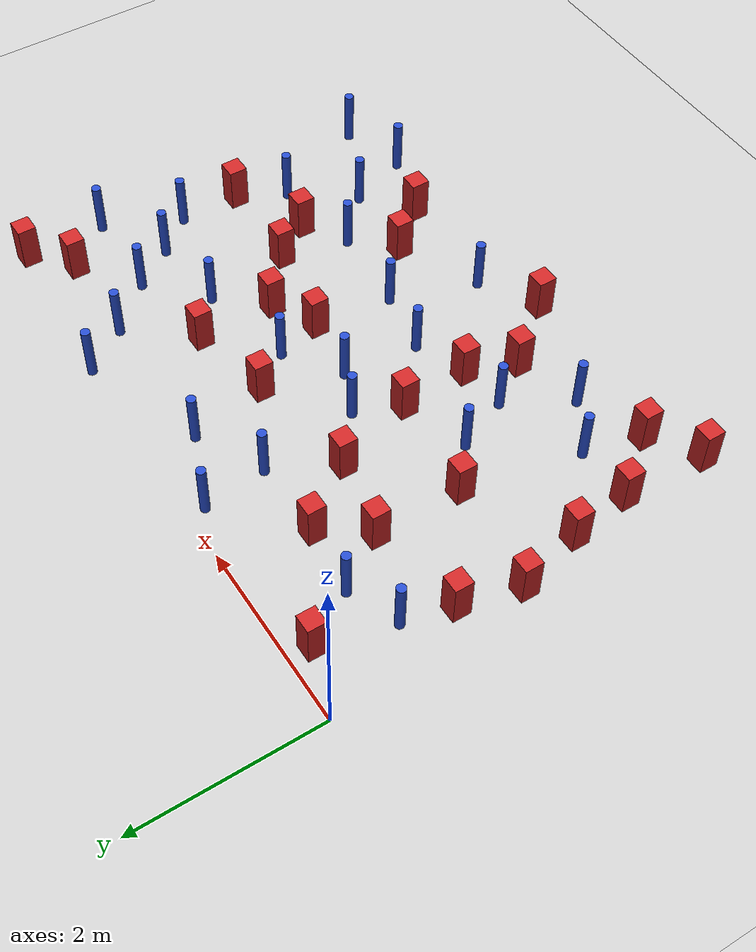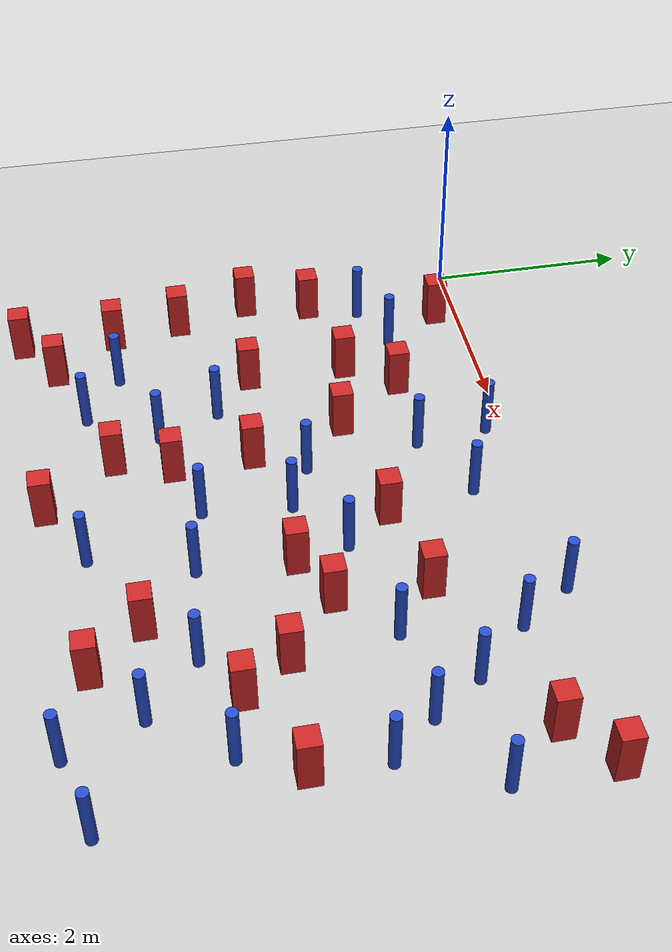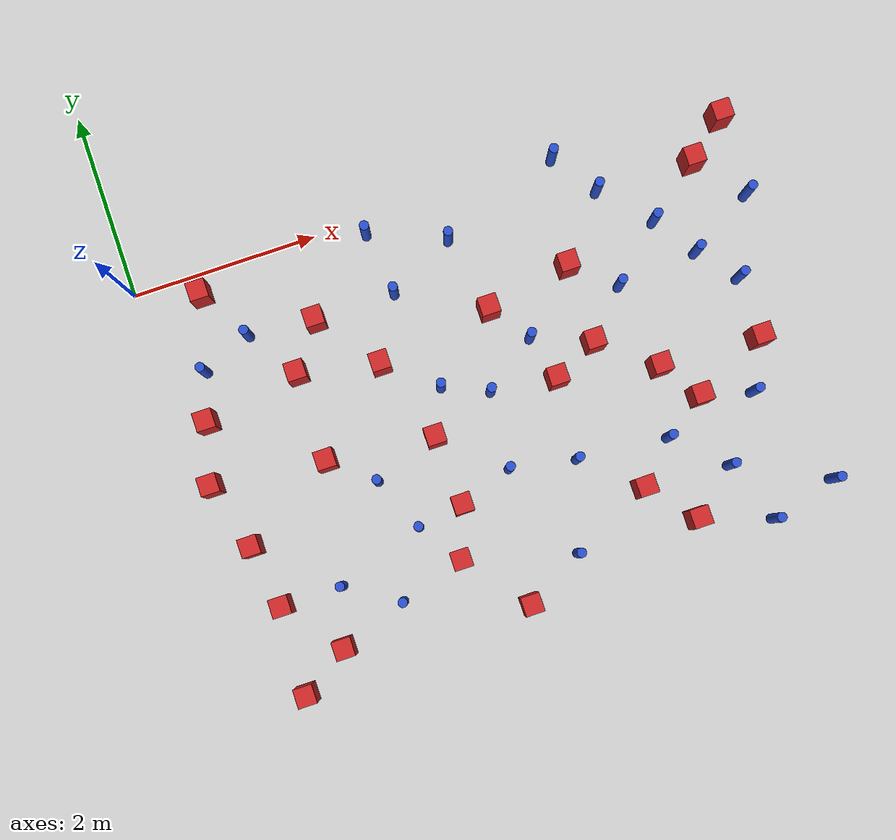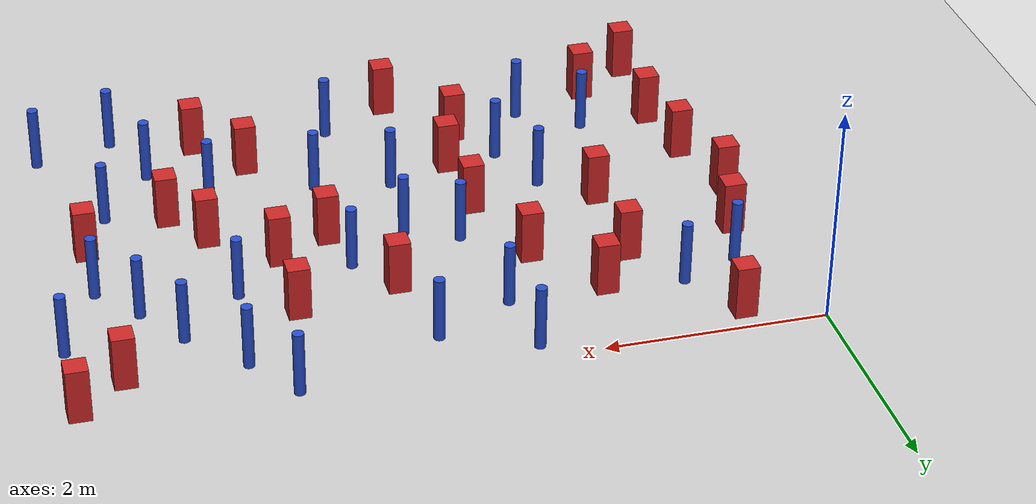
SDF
<sdf version="1.6">
 <world name="default">
  <model name="ground_plane">
   <static>1</static>
   <link name="link">
    <collision name="collision">
     <geometry><plane><normal>0 0 1</normal><size>100 100</size></plane></geometry>
     <surface><friction><ode><mu>100</mu><mu2>50</mu2></ode></friction></surface>
    </collision>
    <visual name="visual">
     <cast_shadows>0</cast_shadows>
     <geometry><plane><normal>0 0 1</normal><size>100 100</size></plane></geometry>
     <material>
      <ambient>1.0 1.0 1.0 1.0</ambient>
      <diffuse>0.8 0.8 0.8 1.0</diffuse>
      <specular>0.01 0.01 0.01 1.000000</specular>
     </material>
    </visual>
   </link>
  </model>
  <model name="NamedLocations">
   <static>true</static>
   <link name="DefaultStart"><pose>8.5 0 0 0 0 3.14</pose></link>
  </model>
  <model name="pole_obstacle4">
   <static>true</static>
   <pose>2.52354586549 -0.172979752865 7.38925637345e-09 -8.471706928e-08 1.24976765208e-08 -1.7451309301e-07</pose>
   <link name="link">
    <pose>0 0 0.3 0 -0 0</pose>
    <inertial>
     <mass>1</mass>
     <inertia><ixx>0.145833</ixx><ixy>0</ixy><ixz>0</ixz><iyy>0.145833</iyy><iyz>0</iyz><izz>0.125</izz></inertia>
    </inertial>
    <collision name="collision">
     <geometry><cylinder><radius>0.05</radius><length>.6</length></cylinder></geometry>
    </collision>
    <visual name="visual">
     <geometry><cylinder><radius>0.05</radius><length>.6</length></cylinder></geometry>
     <material>
      <script><name>Gazebo/Blue</name><uri>file://media/materials/scripts/gazebo.material</uri></script>
     </material>
    </visual>
   </link>
  </model>
  <model name="pole_obstacle6">
   <static>true</static>
   <pose>1.14026042025 -3.58873495884 7.38925637345e-09 -8.47170692799e-08 1.24976765053e-08 -1.74513093017e-07</pose>
   <link name="link">
    <pose>0 0 0.3 0 -0 0</pose>
    <inertial>
     <mass>1</mass>
     <inertia><ixx>0.145833</ixx><ixy>0</ixy><ixz>0</ixz><iyy>0.145833</iyy><iyz>0</iyz><izz>0.125</izz></inertia>
    </inertial>
    <collision name="collision">
     <geometry><cylinder><radius>0.05</radius><length>.6</length></cylinder></geometry>
    </collision>
    <visual name="visual">
     <geometry><cylinder><radius>0.05</radius><length>.6</length></cylinder></geometry>
     <material>
      <script><name>Gazebo/Blue</name><uri>file://media/materials/scripts/gazebo.material</uri></script>
     </material>
    </visual>
   </link>
  </model>
  <model name="square_post_obstacle4">
   <static>true</static>
   <pose>0.182297855617 -2.18379983032 1.91545236811e-07 -7.35059704564e-06 1.12565212e-07 2.39332434364e-05</pose>
   <link name="link">
    <pose>0 0 0.25 0 -0 0</pose>
    <inertial>
     <mass>100</mass>
     <inertia>
      <ixx>0.166667</ixx>
      <ixy>0</ixy>
      <ixz>0</ixz>
      <iyy>0.166667</iyy>
      <iyz>0</iyz>
      <izz>0.166667</izz>
     </inertia>
    </inertial>
    <collision name="collision"><geometry><box><size>.2 .2 .5</size></box></geometry></collision>
    <visual name="visual">
     <geometry><box><size>.2 .2 .5</size></box></geometry>
     <material>
      <script><name>Gazebo/Red</name><uri>file://media/materials/scripts/gazebo.material</uri></script>
     </material>
    </visual>
   </link>
  </model>
  <model name="square_post_obstacle7">
   <static>true</static>
   <pose>0.385087380425 -2.91029149053 1.91545236811e-07 -7.35059704564e-06 1.12565212e-07 2.39332434364e-05</pose>
   <link name="link">
    <pose>0 0 0.25 0 -0 0</pose>
    <inertial>
     <mass>100</mass>
     <inertia>
      <ixx>0.166667</ixx>
      <ixy>0</ixy>
      <ixz>0</ixz>
      <iyy>0.166667</iyy>
      <iyz>0</iyz>
      <izz>0.166667</izz>
     </inertia>
    </inertial>
    <collision name="collision"><geometry><box><size>.2 .2 .5</size></box></geometry></collision>
    <visual name="visual">
     <geometry><box><size>.2 .2 .5</size></box></geometry>
     <material>
      <script><name>Gazebo/Red</name><uri>file://media/materials/scripts/gazebo.material</uri></script>
     </material>
    </visual>
   </link>
  </model>
  <model name="pole_obstacle10">
   <static>true</static>
   <pose>1.82763532323 -2.68481853135 7.38925637345e-09 -8.47170692799e-08 1.24976765053e-08 -1.74513093017e-07</pose>
   <link name="link">
    <pose>0 0 0.3 0 -0 0</pose>
    <inertial>
     <mass>1</mass>
     <inertia><ixx>0.145833</ixx><ixy>0</ixy><ixz>0</ixz><iyy>0.145833</iyy><iyz>0</iyz><izz>0.125</izz></inertia>
    </inertial>
    <collision name="collision">
     <geometry><cylinder><radius>0.05</radius><length>.6</length></cylinder></geometry>
    </collision>
    <visual name="visual">
     <geometry><cylinder><radius>0.05</radius><length>.6</length></cylinder></geometry>
     <material>
      <script><name>Gazebo/Blue</name><uri>file://media/materials/scripts/gazebo.material</uri></script>
     </material>
    </visual>
   </link>
  </model>
  <model name="pole_obstacle11">
   <static>true</static>
   <pose>3.85353323174 -3.12247104477 7.38925637345e-09 -8.47170692798e-08 1.24976764939e-08 -1.74513093025e-07</pose>
   <link name="link">
    <pose>0 0 0.3 0 -0 0</pose>
    <inertial>
     <mass>1</mass>
     <inertia><ixx>0.145833</ixx><ixy>0</ixy><ixz>0</ixz><iyy>0.145833</iyy><iyz>0</iyz><izz>0.125</izz></inertia>
    </inertial>
    <collision name="collision">
     <geometry><cylinder><radius>0.05</radius><length>.6</length></cylinder></geometry>
    </collision>
    <visual name="visual">
     <geometry><cylinder><radius>0.05</radius><length>.6</length></cylinder></geometry>
     <material>
      <script><name>Gazebo/Blue</name><uri>file://media/materials/scripts/gazebo.material</uri></script>
     </material>
    </visual>
   </link>
  </model>
  <model name="pole_obstacle18">
   <static>true</static>
   <pose>6.0780218421 -1.86008930025 7.38925637345e-09 -8.471706928e-08 1.24976765134e-08 -1.74513093015e-07</pose>
   <link name="link">
    <pose>0 0 0.3 0 -0 0</pose>
    <inertial>
     <mass>1</mass>
     <inertia><ixx>0.145833</ixx><ixy>0</ixy><ixz>0</ixz><iyy>0.145833</iyy><iyz>0</iyz><izz>0.125</izz></inertia>
    </inertial>
    <collision name="collision">
     <geometry><cylinder><radius>0.05</radius><length>.6</length></cylinder></geometry>
    </collision>
    <visual name="visual">
     <geometry><cylinder><radius>0.05</radius><length>.6</length></cylinder></geometry>
     <material>
      <script><name>Gazebo/Blue</name><uri>file://media/materials/scripts/gazebo.material</uri></script>
     </material>
    </visual>
   </link>
  </model>
  <model name="pole_obstacle25">
   <static>true</static>
   <pose>5.5819517249 -4.34960210006 7.38925637345e-09 -8.47170692796e-08 1.24976764786e-08 -1.74513093032e-07</pose>
   <link name="link">
    <pose>0 0 0.3 0 -0 0</pose>
    <inertial>
     <mass>1</mass>
     <inertia><ixx>0.145833</ixx><ixy>0</ixy><ixz>0</ixz><iyy>0.145833</iyy><iyz>0</iyz><izz>0.125</izz></inertia>
    </inertial>
    <collision name="collision">
     <geometry><cylinder><radius>0.05</radius><length>.6</length></cylinder></geometry>
    </collision>
    <visual name="visual">
     <geometry><cylinder><radius>0.05</radius><length>.6</length></cylinder></geometry>
     <material>
      <script><name>Gazebo/Blue</name><uri>file://media/materials/scripts/gazebo.material</uri></script>
     </material>
    </visual>
   </link>
  </model>
  <model name="square_post_obstacle20">
   <static>true</static>
   <pose>0.49382564649 -3.58692973787 1.91545236811e-07 -7.35059704564e-06 1.12565212e-07 2.39332434364e-05</pose>
   <link name="link">
    <pose>0 0 0.25 0 -0 0</pose>
    <inertial>
     <mass>100</mass>
     <inertia>
      <ixx>0.166667</ixx>
      <ixy>0</ixy>
      <ixz>0</ixz>
      <iyy>0.166667</iyy>
      <iyz>0</iyz>
      <izz>0.166667</izz>
     </inertia>
    </inertial>
    <collision name="collision"><geometry><box><size>.2 .2 .5</size></box></geometry></collision>
    <visual name="visual">
     <geometry><box><size>.2 .2 .5</size></box></geometry>
     <material>
      <script><name>Gazebo/Red</name><uri>file://media/materials/scripts/gazebo.material</uri></script>
     </material>
    </visual>
   </link>
  </model>
  <model name="square_post_obstacle26">
   <static>true</static>
   <pose>0.342454666947 -1.54306636643 1.91545236811e-07 -7.35059704564e-06 1.12565212e-07 2.39332434364e-05</pose>
   <link name="link">
    <pose>0 0 0.25 0 -0 0</pose>
    <inertial>
     <mass>100</mass>
     <inertia>
      <ixx>0.166667</ixx>
      <ixy>0</ixy>
      <ixz>0</ixz>
      <iyy>0.166667</iyy>
      <iyz>0</iyz>
      <izz>0.166667</izz>
     </inertia>
    </inertial>
    <collision name="collision"><geometry><box><size>.2 .2 .5</size></box></geometry></collision>
    <visual name="visual">
     <geometry><box><size>.2 .2 .5</size></box></geometry>
     <material>
      <script><name>Gazebo/Red</name><uri>file://media/materials/scripts/gazebo.material</uri></script>
     </material>
    </visual>
   </link>
  </model>
  <model name="square_post_obstacle28">
   <static>true</static>
   <pose>1.38189060266 -1.3526002191 1.91545236811e-07 -7.35059704564e-06 1.12565212e-07 2.39332434364e-05</pose>
   <link name="link">
    <pose>0 0 0.25 0 -0 0</pose>
    <inertial>
     <mass>100</mass>
     <inertia>
      <ixx>0.166667</ixx>
      <ixy>0</ixy>
      <ixz>0</ixz>
      <iyy>0.166667</iyy>
      <iyz>0</iyz>
      <izz>0.166667</izz>
     </inertia>
    </inertial>
    <collision name="collision"><geometry><box><size>.2 .2 .5</size></box></geometry></collision>
    <visual name="visual">
     <geometry><box><size>.2 .2 .5</size></box></geometry>
     <material>
      <script><name>Gazebo/Red</name><uri>file://media/materials/scripts/gazebo.material</uri></script>
     </material>
    </visual>
   </link>
  </model>
  <model name="pole_obstacle35">
   <static>true</static>
   <pose>5.43106437271 -1.00845521671 7.38925637345e-09 -8.471706928e-08 1.24976765101e-08 -1.74513093015e-07</pose>
   <link name="link">
    <pose>0 0 0.3 0 -0 0</pose>
    <inertial>
     <mass>1</mass>
     <inertia><ixx>0.145833</ixx><ixy>0</ixy><ixz>0</ixz><iyy>0.145833</iyy><iyz>0</iyz><izz>0.125</izz></inertia>
    </inertial>
    <collision name="collision">
     <geometry><cylinder><radius>0.05</radius><length>.6</length></cylinder></geometry>
    </collision>
    <visual name="visual">
     <geometry><cylinder><radius>0.05</radius><length>.6</length></cylinder></geometry>
     <material>
      <script><name>Gazebo/Blue</name><uri>file://media/materials/scripts/gazebo.material</uri></script>
     </material>
    </visual>
   </link>
  </model>
  <model name="pole_obstacle40">
   <static>true</static>
   <pose>4.82441043605 -3.2085314311 7.38925637345e-09 -8.47170692798e-08 1.24976764937e-08 -1.74513093023e-07</pose>
   <link name="link">
    <pose>0 0 0.3 0 -0 0</pose>
    <inertial>
     <mass>1</mass>
     <inertia><ixx>0.145833</ixx><ixy>0</ixy><ixz>0</ixz><iyy>0.145833</iyy><iyz>0</iyz><izz>0.125</izz></inertia>
    </inertial>
    <collision name="collision">
     <geometry><cylinder><radius>0.05</radius><length>.6</length></cylinder></geometry>
    </collision>
    <visual name="visual">
     <geometry><cylinder><radius>0.05</radius><length>.6</length></cylinder></geometry>
     <material>
      <script><name>Gazebo/Blue</name><uri>file://media/materials/scripts/gazebo.material</uri></script>
     </material>
    </visual>
   </link>
  </model>
  <model name="square_post_obstacle42">
   <static>true</static>
   <pose>6.44566975658 -0.173356314862 1.91545236811e-07 -7.35059704564e-06 1.12565212e-07 2.39332434364e-05</pose>
   <link name="link">
    <pose>0 0 0.25 0 -0 0</pose>
    <inertial>
     <mass>100</mass>
     <inertia>
      <ixx>0.166667</ixx>
      <ixy>0</ixy>
      <ixz>0</ixz>
      <iyy>0.166667</iyy>
      <iyz>0</iyz>
      <izz>0.166667</izz>
     </inertia>
    </inertial>
    <collision name="collision"><geometry><box><size>.2 .2 .5</size></box></geometry></collision>
    <visual name="visual">
     <geometry><box><size>.2 .2 .5</size></box></geometry>
     <material>
      <script><name>Gazebo/Red</name><uri>file://media/materials/scripts/gazebo.material</uri></script>
     </material>
    </visual>
   </link>
  </model>
  <model name="square_post_obstacle45">
   <static>true</static>
   <pose>0.459297580475 -4.51668139729 1.91545236811e-07 -7.35059704564e-06 1.12565212e-07 2.39332434364e-05</pose>
   <link name="link">
    <pose>0 0 0.25 0 -0 0</pose>
    <inertial>
     <mass>100</mass>
     <inertia>
      <ixx>0.166667</ixx>
      <ixy>0</ixy>
      <ixz>0</ixz>
      <iyy>0.166667</iyy>
      <iyz>0</iyz>
      <izz>0.166667</izz>
     </inertia>
    </inertial>
    <collision name="collision"><geometry><box><size>.2 .2 .5</size></box></geometry></collision>
    <visual name="visual">
     <geometry><box><size>.2 .2 .5</size></box></geometry>
     <material>
      <script><name>Gazebo/Red</name><uri>file://media/materials/scripts/gazebo.material</uri></script>
     </material>
    </visual>
   </link>
  </model>
  <model name="pole_obstacle65">
   <static>true</static>
   <pose>3.32256471329 -0.504397547687 7.38925637345e-09 -8.471706928e-08 1.24976765186e-08 -1.74513093012e-07</pose>
   <link name="link">
    <pose>0 0 0.3 0 -0 0</pose>
    <inertial>
     <mass>1</mass>
     <inertia><ixx>0.145833</ixx><ixy>0</ixy><ixz>0</ixz><iyy>0.145833</iyy><iyz>0</iyz><izz>0.125</izz></inertia>
    </inertial>
    <collision name="collision">
     <geometry><cylinder><radius>0.05</radius><length>.6</length></cylinder></geometry>
    </collision>
    <visual name="visual">
     <geometry><cylinder><radius>0.05</radius><length>.6</length></cylinder></geometry>
     <material>
      <script><name>Gazebo/Blue</name><uri>file://media/materials/scripts/gazebo.material</uri></script>
     </material>
    </visual>
   </link>
  </model>
  <model name="pole_obstacle77">
   <static>true</static>
   <pose>0.481585702395 -1.02948417264 7.38925637345e-09 -8.47170692798e-08 1.24976764961e-08 -1.74513093022e-07</pose>
   <link name="link">
    <pose>0 0 0.3 0 -0 0</pose>
    <inertial>
     <mass>1</mass>
     <inertia><ixx>0.145833</ixx><ixy>0</ixy><ixz>0</ixz><iyy>0.145833</iyy><iyz>0</iyz><izz>0.125</izz></inertia>
    </inertial>
    <collision name="collision">
     <geometry><cylinder><radius>0.05</radius><length>.6</length></cylinder></geometry>
    </collision>
    <visual name="visual">
     <geometry><cylinder><radius>0.05</radius><length>.6</length></cylinder></geometry>
     <material>
      <script><name>Gazebo/Blue</name><uri>file://media/materials/scripts/gazebo.material</uri></script>
     </material>
    </visual>
   </link>
  </model>
  <model name="pole_obstacle79">
   <static>true</static>
   <pose>3.5519941236 -4.0437278819 7.38925637345e-09 -8.47170692799e-08 1.24976764995e-08 -1.74513093021e-07</pose>
   <link name="link">
    <pose>0 0 0.3 0 -0 0</pose>
    <inertial>
     <mass>1</mass>
     <inertia><ixx>0.145833</ixx><ixy>0</ixy><ixz>0</ixz><iyy>0.145833</iyy><iyz>0</iyz><izz>0.125</izz></inertia>
    </inertial>
    <collision name="collision">
     <geometry><cylinder><radius>0.05</radius><length>.6</length></cylinder></geometry>
    </collision>
    <visual name="visual">
     <geometry><cylinder><radius>0.05</radius><length>.6</length></cylinder></geometry>
     <material>
      <script><name>Gazebo/Blue</name><uri>file://media/materials/scripts/gazebo.material</uri></script>
     </material>
    </visual>
   </link>
  </model>
  <model name="square_post_obstacle70">
   <static>true</static>
   <pose>4.41020320494 -1.16916210372 1.91545236811e-07 -7.35059704564e-06 1.12565212e-07 2.39332434364e-05</pose>
   <link name="link">
    <pose>0 0 0.25 0 -0 0</pose>
    <inertial>
     <mass>100</mass>
     <inertia>
      <ixx>0.166667</ixx>
      <ixy>0</ixy>
      <ixz>0</ixz>
      <iyy>0.166667</iyy>
      <iyz>0</iyz>
      <izz>0.166667</izz>
     </inertia>
    </inertial>
    <collision name="collision"><geometry><box><size>.2 .2 .5</size></box></geometry></collision>
    <visual name="visual">
     <geometry><box><size>.2 .2 .5</size></box></geometry>
     <material>
      <script><name>Gazebo/Red</name><uri>file://media/materials/scripts/gazebo.material</uri></script>
     </material>
    </visual>
   </link>
  </model>
  <model name="square_post_obstacle72">
   <static>true</static>
   <pose>5.27130910377 -2.8988232657 1.91545236811e-07 -7.35059704564e-06 1.12565212e-07 2.39332434364e-05</pose>
   <link name="link">
    <pose>0 0 0.25 0 -0 0</pose>
    <inertial>
     <mass>100</mass>
     <inertia>
      <ixx>0.166667</ixx>
      <ixy>0</ixy>
      <ixz>0</ixz>
      <iyy>0.166667</iyy>
      <iyz>0</iyz>
      <izz>0.166667</izz>
     </inertia>
    </inertial>
    <collision name="collision"><geometry><box><size>.2 .2 .5</size></box></geometry></collision>
    <visual name="visual">
     <geometry><box><size>.2 .2 .5</size></box></geometry>
     <material>
      <script><name>Gazebo/Red</name><uri>file://media/materials/scripts/gazebo.material</uri></script>
     </material>
    </visual>
   </link>
  </model>
  <model name="pole_obstacle85">
   <static>true</static>
   <pose>4.96795111286 -0.511769533748 7.38925637345e-09 -8.47170692798e-08 1.24976765005e-08 -1.74513093021e-07</pose>
   <link name="link">
    <pose>0 0 0.3 0 -0 0</pose>
    <inertial>
     <mass>1</mass>
     <inertia><ixx>0.145833</ixx><ixy>0</ixy><ixz>0</ixz><iyy>0.145833</iyy><iyz>0</iyz><izz>0.125</izz></inertia>
    </inertial>
    <collision name="collision">
     <geometry><cylinder><radius>0.05</radius><length>.6</length></cylinder></geometry>
    </collision>
    <visual name="visual">
     <geometry><cylinder><radius>0.05</radius><length>.6</length></cylinder></geometry>
     <material>
      <script><name>Gazebo/Blue</name><uri>file://media/materials/scripts/gazebo.material</uri></script>
     </material>
    </visual>
   </link>
  </model>
  <model name="square_post_obstacle73">
   <static>true</static>
   <pose>2.53244975121 -2.43503713704 1.91545236811e-07 -7.35059704564e-06 1.12565212e-07 2.39332434364e-05</pose>
   <link name="link">
    <pose>0 0 0.25 0 -0 0</pose>
    <inertial>
     <mass>100</mass>
     <inertia>
      <ixx>0.166667</ixx>
      <ixy>0</ixy>
      <ixz>0</ixz>
      <iyy>0.166667</iyy>
      <iyz>0</iyz>
      <izz>0.166667</izz>
     </inertia>
    </inertial>
    <collision name="collision"><geometry><box><size>.2 .2 .5</size></box></geometry></collision>
    <visual name="visual">
     <geometry><box><size>.2 .2 .5</size></box></geometry>
     <material>
      <script><name>Gazebo/Red</name><uri>file://media/materials/scripts/gazebo.material</uri></script>
     </material>
    </visual>
   </link>
  </model>
  <model name="square_post_obstacle86">
   <static>true</static>
   <pose>6.01618016727 -0.530010584377 1.91545236811e-07 -7.35059704564e-06 1.12565212e-07 2.39332434364e-05</pose>
   <link name="link">
    <pose>0 0 0.25 0 -0 0</pose>
    <inertial>
     <mass>100</mass>
     <inertia>
      <ixx>0.166667</ixx>
      <ixy>0</ixy>
      <ixz>0</ixz>
      <iyy>0.166667</iyy>
      <iyz>0</iyz>
      <izz>0.166667</izz>
     </inertia>
    </inertial>
    <collision name="collision"><geometry><box><size>.2 .2 .5</size></box></geometry></collision>
    <visual name="visual">
     <geometry><box><size>.2 .2 .5</size></box></geometry>
     <material>
      <script><name>Gazebo/Red</name><uri>file://media/materials/scripts/gazebo.material</uri></script>
     </material>
    </visual>
   </link>
  </model>
  <model name="pole_obstacle98">
   <static>true</static>
   <pose>2.07930388125 -3.26746651544 7.38925637345e-09 -8.47170692798e-08 1.24976764939e-08 -1.74513093025e-07</pose>
   <link name="link">
    <pose>0 0 0.3 0 -0 0</pose>
    <inertial>
     <mass>1</mass>
     <inertia><ixx>0.145833</ixx><ixy>0</ixy><ixz>0</ixz><iyy>0.145833</iyy><iyz>0</iyz><izz>0.125</izz></inertia>
    </inertial>
    <collision name="collision">
     <geometry><cylinder><radius>0.05</radius><length>.6</length></cylinder></geometry>
    </collision>
    <visual name="visual">
     <geometry><cylinder><radius>0.05</radius><length>.6</length></cylinder></geometry>
     <material>
      <script><name>Gazebo/Blue</name><uri>file://media/materials/scripts/gazebo.material</uri></script>
     </material>
    </visual>
   </link>
  </model>
  <model name="pole_obstacle99">
   <static>true</static>
   <pose>1.68852073536 -3.94086955083 7.38925637345e-09 -8.47170692799e-08 1.24976765053e-08 -1.74513093017e-07</pose>
   <link name="link">
    <pose>0 0 0.3 0 -0 0</pose>
    <inertial>
     <mass>1</mass>
     <inertia><ixx>0.145833</ixx><ixy>0</ixy><ixz>0</ixz><iyy>0.145833</iyy><iyz>0</iyz><izz>0.125</izz></inertia>
    </inertial>
    <collision name="collision">
     <geometry><cylinder><radius>0.05</radius><length>.6</length></cylinder></geometry>
    </collision>
    <visual name="visual">
     <geometry><cylinder><radius>0.05</radius><length>.6</length></cylinder></geometry>
     <material>
      <script><name>Gazebo/Blue</name><uri>file://media/materials/scripts/gazebo.material</uri></script>
     </material>
    </visual>
   </link>
  </model>
  <model name="square_post_obstacle97">
   <static>true</static>
   <pose>4.82986860788 -4.09003584182 1.91545236811e-07 -7.35059704564e-06 1.12565212e-07 2.39332434364e-05</pose>
   <link name="link">
    <pose>0 0 0.25 0 -0 0</pose>
    <inertial>
     <mass>100</mass>
     <inertia>
      <ixx>0.166667</ixx>
      <ixy>0</ixy>
      <ixz>0</ixz>
      <iyy>0.166667</iyy>
      <iyz>0</iyz>
      <izz>0.166667</izz>
     </inertia>
    </inertial>
    <collision name="collision"><geometry><box><size>.2 .2 .5</size></box></geometry></collision>
    <visual name="visual">
     <geometry><box><size>.2 .2 .5</size></box></geometry>
     <material>
      <script><name>Gazebo/Red</name><uri>file://media/materials/scripts/gazebo.material</uri></script>
     </material>
    </visual>
   </link>
  </model>
  <model name="square_post_obstacle98">
   <static>true</static>
   <pose>4.41330014491 -3.6151857069 1.91545236811e-07 -7.35059704564e-06 1.12565212e-07 2.39332434364e-05</pose>
   <link name="link">
    <pose>0 0 0.25 0 -0 0</pose>
    <inertial>
     <mass>100</mass>
     <inertia>
      <ixx>0.166667</ixx>
      <ixy>0</ixy>
      <ixz>0</ixz>
      <iyy>0.166667</iyy>
      <iyz>0</iyz>
      <izz>0.166667</izz>
     </inertia>
    </inertial>
    <collision name="collision"><geometry><box><size>.2 .2 .5</size></box></geometry></collision>
    <visual name="visual">
     <geometry><box><size>.2 .2 .5</size></box></geometry>
     <material>
      <script><name>Gazebo/Red</name><uri>file://media/materials/scripts/gazebo.material</uri></script>
     </material>
    </visual>
   </link>
  </model>
  <model name="pole_obstacle104">
   <static>true</static>
   <pose>3.23064411423 -2.1715812948 7.38925637345e-09 -8.47170692798e-08 1.24976764939e-08 -1.74513093025e-07</pose>
   <link name="link">
    <pose>0 0 0.3 0 -0 0</pose>
    <inertial>
     <mass>1</mass>
     <inertia><ixx>0.145833</ixx><ixy>0</ixy><ixz>0</ixz><iyy>0.145833</iyy><iyz>0</iyz><izz>0.125</izz></inertia>
    </inertial>
    <collision name="collision">
     <geometry><cylinder><radius>0.05</radius><length>.6</length></cylinder></geometry>
    </collision>
    <visual name="visual">
     <geometry><cylinder><radius>0.05</radius><length>.6</length></cylinder></geometry>
     <material>
      <script><name>Gazebo/Blue</name><uri>file://media/materials/scripts/gazebo.material</uri></script>
     </material>
    </visual>
   </link>
  </model>
  <model name="square_post_obstacle102">
   <static>true</static>
   <pose>2.23478806774 -1.53384341802 1.91545236811e-07 -7.35059704564e-06 1.12565212e-07 2.39332434364e-05</pose>
   <link name="link">
    <pose>0 0 0.25 0 -0 0</pose>
    <inertial>
     <mass>100</mass>
     <inertia>
      <ixx>0.166667</ixx>
      <ixy>0</ixy>
      <ixz>0</ixz>
      <iyy>0.166667</iyy>
      <iyz>0</iyz>
      <izz>0.166667</izz>
     </inertia>
    </inertial>
    <collision name="collision"><geometry><box><size>.2 .2 .5</size></box></geometry></collision>
    <visual name="visual">
     <geometry><box><size>.2 .2 .5</size></box></geometry>
     <material>
      <script><name>Gazebo/Red</name><uri>file://media/materials/scripts/gazebo.material</uri></script>
     </material>
    </visual>
   </link>
  </model>
  <model name="pole_obstacle112">
   <static>true</static>
   <pose>4.8630517241 -1.54293452733 7.38925637345e-09 -8.471706928e-08 1.24976765134e-08 -1.74513093015e-07</pose>
   <link name="link">
    <pose>0 0 0.3 0 -0 0</pose>
    <inertial>
     <mass>1</mass>
     <inertia><ixx>0.145833</ixx><ixy>0</ixy><ixz>0</ixz><iyy>0.145833</iyy><iyz>0</iyz><izz>0.125</izz></inertia>
    </inertial>
    <collision name="collision">
     <geometry><cylinder><radius>0.05</radius><length>.6</length></cylinder></geometry>
    </collision>
    <visual name="visual">
     <geometry><cylinder><radius>0.05</radius><length>.6</length></cylinder></geometry>
     <material>
      <script><name>Gazebo/Blue</name><uri>file://media/materials/scripts/gazebo.material</uri></script>
     </material>
    </visual>
   </link>
  </model>
  <model name="square_post_obstacle110">
   <static>true</static>
   <pose>1.73243401027 -0.879495644446 1.91545236811e-07 -7.35059704564e-06 1.12565212e-07 2.39332434364e-05</pose>
   <link name="link">
    <pose>0 0 0.25 0 -0 0</pose>
    <inertial>
     <mass>100</mass>
     <inertia>
      <ixx>0.166667</ixx>
      <ixy>0</ixy>
      <ixz>0</ixz>
      <iyy>0.166667</iyy>
      <iyz>0</iyz>
      <izz>0.166667</izz>
     </inertia>
    </inertial>
    <collision name="collision"><geometry><box><size>.2 .2 .5</size></box></geometry></collision>
    <visual name="visual">
     <geometry><box><size>.2 .2 .5</size></box></geometry>
     <material>
      <script><name>Gazebo/Red</name><uri>file://media/materials/scripts/gazebo.material</uri></script>
     </material>
    </visual>
   </link>
  </model>
  <model name="pole_obstacle117">
   <static>true</static>
   <pose>1.02058423602 -0.805461946773 7.38925637345e-09 -8.47170692798e-08 1.24976764942e-08 -1.74513093024e-07</pose>
   <link name="link">
    <pose>0 0 0.3 0 -0 0</pose>
    <inertial>
     <mass>1</mass>
     <inertia><ixx>0.145833</ixx><ixy>0</ixy><ixz>0</ixz><iyy>0.145833</iyy><iyz>0</iyz><izz>0.125</izz></inertia>
    </inertial>
    <collision name="collision">
     <geometry><cylinder><radius>0.05</radius><length>.6</length></cylinder></geometry>
    </collision>
    <visual name="visual">
     <geometry><cylinder><radius>0.05</radius><length>.6</length></cylinder></geometry>
     <material>
      <script><name>Gazebo/Blue</name><uri>file://media/materials/scripts/gazebo.material</uri></script>
     </material>
    </visual>
   </link>
  </model>
  <model name="square_post_obstacle121">
   <static>true</static>
   <pose>0.970241502026 -4.19111780717 1.91545236811e-07 -7.35059704564e-06 1.12565212e-07 2.39332434364e-05</pose>
   <link name="link">
    <pose>0 0 0.25 0 -0 0</pose>
    <inertial>
     <mass>100</mass>
     <inertia>
      <ixx>0.166667</ixx>
      <ixy>0</ixy>
      <ixz>0</ixz>
      <iyy>0.166667</iyy>
      <iyz>0</iyz>
      <izz>0.166667</izz>
     </inertia>
    </inertial>
    <collision name="collision"><geometry><box><size>.2 .2 .5</size></box></geometry></collision>
    <visual name="visual">
     <geometry><box><size>.2 .2 .5</size></box></geometry>
     <material>
      <script><name>Gazebo/Red</name><uri>file://media/materials/scripts/gazebo.material</uri></script>
     </material>
    </visual>
   </link>
  </model>
  <model name="pole_obstacle123">
   <static>true</static>
   <pose>6.45015567072 -1.04547024138 7.38925637345e-09 -8.471706928e-08 1.24976765101e-08 -1.74513093015e-07</pose>
   <link name="link">
    <pose>0 0 0.3 0 -0 0</pose>
    <inertial>
     <mass>1</mass>
     <inertia><ixx>0.145833</ixx><ixy>0</ixy><ixz>0</ixz><iyy>0.145833</iyy><iyz>0</iyz><izz>0.125</izz></inertia>
    </inertial>
    <collision name="collision">
     <geometry><cylinder><radius>0.05</radius><length>.6</length></cylinder></geometry>
    </collision>
    <visual name="visual">
     <geometry><cylinder><radius>0.05</radius><length>.6</length></cylinder></geometry>
     <material>
      <script><name>Gazebo/Blue</name><uri>file://media/materials/scripts/gazebo.material</uri></script>
     </material>
    </visual>
   </link>
  </model>
  <model name="square_post_obstacle127">
   <static>true</static>
   <pose>2.38477010834 -3.71820952959 1.91545236811e-07 -7.35059704564e-06 1.12565212e-07 2.39332434364e-05</pose>
   <link name="link">
    <pose>0 0 0.25 0 -0 0</pose>
    <inertial>
     <mass>100</mass>
     <inertia>
      <ixx>0.166667</ixx>
      <ixy>0</ixy>
      <ixz>0</ixz>
      <iyy>0.166667</iyy>
      <iyz>0</iyz>
      <izz>0.166667</izz>
     </inertia>
    </inertial>
    <collision name="collision"><geometry><box><size>.2 .2 .5</size></box></geometry></collision>
    <visual name="visual">
     <geometry><box><size>.2 .2 .5</size></box></geometry>
     <material>
      <script><name>Gazebo/Red</name><uri>file://media/materials/scripts/gazebo.material</uri></script>
     </material>
    </visual>
   </link>
  </model>
  <model name="square_post_obstacle128">
   <static>true</static>
   <pose>4.97691506553 -2.47465356542 1.91545236811e-07 -7.35059704564e-06 1.12565212e-07 2.39332434364e-05</pose>
   <link name="link">
    <pose>0 0 0.25 0 -0 0</pose>
    <inertial>
     <mass>100</mass>
     <inertia>
      <ixx>0.166667</ixx>
      <ixy>0</ixy>
      <ixz>0</ixz>
      <iyy>0.166667</iyy>
      <iyz>0</iyz>
      <izz>0.166667</izz>
     </inertia>
    </inertial>
    <collision name="collision"><geometry><box><size>.2 .2 .5</size></box></geometry></collision>
    <visual name="visual">
     <geometry><box><size>.2 .2 .5</size></box></geometry>
     <material>
      <script><name>Gazebo/Red</name><uri>file://media/materials/scripts/gazebo.material</uri></script>
     </material>
    </visual>
   </link>
  </model>
  <model name="pole_obstacle132">
   <static>true</static>
   <pose>5.74226064334 -1.46166600901 7.38925637345e-09 -8.471706928e-08 1.24976765134e-08 -1.74513093015e-07</pose>
   <link name="link">
    <pose>0 0 0.3 0 -0 0</pose>
    <inertial>
     <mass>1</mass>
     <inertia><ixx>0.145833</ixx><ixy>0</ixy><ixz>0</ixz><iyy>0.145833</iyy><iyz>0</iyz><izz>0.125</izz></inertia>
    </inertial>
    <collision name="collision">
     <geometry><cylinder><radius>0.05</radius><length>.6</length></cylinder></geometry>
    </collision>
    <visual name="visual">
     <geometry><cylinder><radius>0.05</radius><length>.6</length></cylinder></geometry>
     <material>
      <script><name>Gazebo/Blue</name><uri>file://media/materials/scripts/gazebo.material</uri></script>
     </material>
    </visual>
   </link>
  </model>
  <model name="pole_obstacle137">
   <static>true</static>
   <pose>3.80054773199 -1.76635031219 7.38925637345e-09 -8.471706928e-08 1.24976765152e-08 -1.74513093012e-07</pose>
   <link name="link">
    <pose>0 0 0.3 0 -0 0</pose>
    <inertial>
     <mass>1</mass>
     <inertia><ixx>0.145833</ixx><ixy>0</ixy><ixz>0</ixz><iyy>0.145833</iyy><iyz>0</iyz><izz>0.125</izz></inertia>
    </inertial>
    <collision name="collision">
     <geometry><cylinder><radius>0.05</radius><length>.6</length></cylinder></geometry>
    </collision>
    <visual name="visual">
     <geometry><cylinder><radius>0.05</radius><length>.6</length></cylinder></geometry>
     <material>
      <script><name>Gazebo/Blue</name><uri>file://media/materials/scripts/gazebo.material</uri></script>
     </material>
    </visual>
   </link>
  </model>
  <model name="square_post_obstacle135">
   <static>true</static>
   <pose>2.91999619768 -4.37924009221 1.91545236811e-07 -7.35059704564e-06 1.12565212e-07 2.39332434364e-05</pose>
   <link name="link">
    <pose>0 0 0.25 0 -0 0</pose>
    <inertial>
     <mass>100</mass>
     <inertia>
      <ixx>0.166667</ixx>
      <ixy>0</ixy>
      <ixz>0</ixz>
      <iyy>0.166667</iyy>
      <iyz>0</iyz>
      <izz>0.166667</izz>
     </inertia>
    </inertial>
    <collision name="collision"><geometry><box><size>.2 .2 .5</size></box></geometry></collision>
    <visual name="visual">
     <geometry><box><size>.2 .2 .5</size></box></geometry>
     <material>
      <script><name>Gazebo/Red</name><uri>file://media/materials/scripts/gazebo.material</uri></script>
     </material>
    </visual>
   </link>
  </model>
  <model name="pole_obstacle161">
   <static>true</static>
   <pose>2.60484163581 -0.866802326107 7.38925637345e-09 -8.471706928e-08 1.24976765177e-08 -1.74513093012e-07</pose>
   <link name="link">
    <pose>0 0 0.3 0 -0 0</pose>
    <inertial>
     <mass>1</mass>
     <inertia><ixx>0.145833</ixx><ixy>0</ixy><ixz>0</ixz><iyy>0.145833</iyy><iyz>0</iyz><izz>0.125</izz></inertia>
    </inertial>
    <collision name="collision">
     <geometry><cylinder><radius>0.05</radius><length>.6</length></cylinder></geometry>
    </collision>
    <visual name="visual">
     <geometry><cylinder><radius>0.05</radius><length>.6</length></cylinder></geometry>
     <material>
      <script><name>Gazebo/Blue</name><uri>file://media/materials/scripts/gazebo.material</uri></script>
     </material>
    </visual>
   </link>
  </model>
  <model name="square_post_obstacle158">
   <static>true</static>
   <pose>4.40945747625 -2.01716016401 1.91545236811e-07 -7.35059704564e-06 1.12565212e-07 2.39332434364e-05</pose>
   <link name="link">
    <pose>0 0 0.25 0 -0 0</pose>
    <inertial>
     <mass>100</mass>
     <inertia>
      <ixx>0.166667</ixx>
      <ixy>0</ixy>
      <ixz>0</ixz>
      <iyy>0.166667</iyy>
      <iyz>0</iyz>
      <izz>0.166667</izz>
     </inertia>
    </inertial>
    <collision name="collision"><geometry><box><size>.2 .2 .5</size></box></geometry></collision>
    <visual name="visual">
     <geometry><box><size>.2 .2 .5</size></box></geometry>
     <material>
      <script><name>Gazebo/Red</name><uri>file://media/materials/scripts/gazebo.material</uri></script>
     </material>
    </visual>
   </link>
  </model>
  <model name="square_post_obstacle164">
   <static>true</static>
   <pose>2.5764801551 -3.18757604016 1.91545236811e-07 -7.35059704564e-06 1.12565212e-07 2.39332434364e-05</pose>
   <link name="link">
    <pose>0 0 0.25 0 -0 0</pose>
    <inertial>
     <mass>100</mass>
     <inertia>
      <ixx>0.166667</ixx>
      <ixy>0</ixy>
      <ixz>0</ixz>
      <iyy>0.166667</iyy>
      <iyz>0</iyz>
      <izz>0.166667</izz>
     </inertia>
    </inertial>
    <collision name="collision"><geometry><box><size>.2 .2 .5</size></box></geometry></collision>
    <visual name="visual">
     <geometry><box><size>.2 .2 .5</size></box></geometry>
     <material>
      <script><name>Gazebo/Red</name><uri>file://media/materials/scripts/gazebo.material</uri></script>
     </material>
    </visual>
   </link>
  </model>
  <model name="pole_obstacle168">
   <static>true</static>
   <pose>5.81889165217 -3.03893407313 7.38925637345e-09 -8.47170692798e-08 1.24976764937e-08 -1.74513093023e-07</pose>
   <link name="link">
    <pose>0 0 0.3 0 -0 0</pose>
    <inertial>
     <mass>1</mass>
     <inertia><ixx>0.145833</ixx><ixy>0</ixy><ixz>0</ixz><iyy>0.145833</iyy><iyz>0</iyz><izz>0.125</izz></inertia>
    </inertial>
    <collision name="collision">
     <geometry><cylinder><radius>0.05</radius><length>.6</length></cylinder></geometry>
    </collision>
    <visual name="visual">
     <geometry><cylinder><radius>0.05</radius><length>.6</length></cylinder></geometry>
     <material>
      <script><name>Gazebo/Blue</name><uri>file://media/materials/scripts/gazebo.material</uri></script>
     </material>
    </visual>
   </link>
  </model>
  <model name="pole_obstacle176">
   <static>true</static>
   <pose>2.75720901085 -1.96154681647 7.38925637345e-09 -8.471706928e-08 1.249767651e-08 -1.74513093015e-07</pose>
   <link name="link">
    <pose>0 0 0.3 0 -0 0</pose>
    <inertial>
     <mass>1</mass>
     <inertia><ixx>0.145833</ixx><ixy>0</ixy><ixz>0</ixz><iyy>0.145833</iyy><iyz>0</iyz><izz>0.125</izz></inertia>
    </inertial>
    <collision name="collision">
     <geometry><cylinder><radius>0.05</radius><length>.6</length></cylinder></geometry>
    </collision>
    <visual name="visual">
     <geometry><cylinder><radius>0.05</radius><length>.6</length></cylinder></geometry>
     <material>
      <script><name>Gazebo/Blue</name><uri>file://media/materials/scripts/gazebo.material</uri></script>
     </material>
    </visual>
   </link>
  </model>
  <model name="square_post_obstacle178">
   <static>true</static>
   <pose>0.684180034286 -0.239954552024 1.91545236811e-07 -7.35059704564e-06 1.12565212e-07 2.39332434364e-05</pose>
   <link name="link">
    <pose>0 0 0.25 0 -0 0</pose>
    <inertial>
     <mass>100</mass>
     <inertia>
      <ixx>0.166667</ixx>
      <ixy>0</ixy>
      <ixz>0</ixz>
      <iyy>0.166667</iyy>
      <iyz>0</iyz>
      <izz>0.166667</izz>
     </inertia>
    </inertial>
    <collision name="collision"><geometry><box><size>.2 .2 .5</size></box></geometry></collision>
    <visual name="visual">
     <geometry><box><size>.2 .2 .5</size></box></geometry>
     <material>
      <script><name>Gazebo/Red</name><uri>file://media/materials/scripts/gazebo.material</uri></script>
     </material>
    </visual>
   </link>
  </model>
  <model name="pole_obstacle184">
   <static>true</static>
   <pose>6.29579258354 -4.15398626386 7.38925637345e-09 -8.47170692796e-08 1.24976764786e-08 -1.74513093032e-07</pose>
   <link name="link">
    <pose>0 0 0.3 0 -0 0</pose>
    <inertial>
     <mass>1</mass>
     <inertia><ixx>0.145833</ixx><ixy>0</ixy><ixz>0</ixz><iyy>0.145833</iyy><iyz>0</iyz><izz>0.125</izz></inertia>
    </inertial>
    <collision name="collision">
     <geometry><cylinder><radius>0.05</radius><length>.6</length></cylinder></geometry>
    </collision>
    <visual name="visual">
     <geometry><cylinder><radius>0.05</radius><length>.6</length></cylinder></geometry>
     <material>
      <script><name>Gazebo/Blue</name><uri>file://media/materials/scripts/gazebo.material</uri></script>
     </material>
    </visual>
   </link>
  </model>
  <model name="square_post_obstacle189">
   <static>true</static>
   <pose>3.48480564537 -1.34359986508 1.91545236811e-07 -7.35059704564e-06 1.12565212e-07 2.39332434364e-05</pose>
   <link name="link">
    <pose>0 0 0.25 0 -0 0</pose>
    <inertial>
     <mass>100</mass>
     <inertia>
      <ixx>0.166667</ixx>
      <ixy>0</ixy>
      <ixz>0</ixz>
      <iyy>0.166667</iyy>
      <iyz>0</iyz>
      <izz>0.166667</izz>
     </inertia>
    </inertial>
    <collision name="collision"><geometry><box><size>.2 .2 .5</size></box></geometry></collision>
    <visual name="visual">
     <geometry><box><size>.2 .2 .5</size></box></geometry>
     <material>
      <script><name>Gazebo/Red</name><uri>file://media/materials/scripts/gazebo.material</uri></script>
     </material>
    </visual>
   </link>
  </model>
  <model name="square_post_obstacle195">
   <static>true</static>
   <pose>3.92387560786 -2.25318234083 1.91545236811e-07 -7.35059704564e-06 1.12565212e-07 2.39332434364e-05</pose>
   <link name="link">
    <pose>0 0 0.25 0 -0 0</pose>
    <inertial>
     <mass>100</mass>
     <inertia>
      <ixx>0.166667</ixx>
      <ixy>0</ixy>
      <ixz>0</ixz>
      <iyy>0.166667</iyy>
      <iyz>0</iyz>
      <izz>0.166667</izz>
     </inertia>
    </inertial>
    <collision name="collision"><geometry><box><size>.2 .2 .5</size></box></geometry></collision>
    <visual name="visual">
     <geometry><box><size>.2 .2 .5</size></box></geometry>
     <material>
      <script><name>Gazebo/Red</name><uri>file://media/materials/scripts/gazebo.material</uri></script>
     </material>
    </visual>
   </link>
  </model>
  <model name="square_post_obstacle198">
   <static>true</static>
   <pose>1.38712553931 -2.31267422407 1.91545236811e-07 -7.35059704564e-06 1.12565212e-07 2.39332434364e-05</pose>
   <link name="link">
    <pose>0 0 0.25 0 -0 0</pose>
    <inertial>
     <mass>100</mass>
     <inertia>
      <ixx>0.166667</ixx>
      <ixy>0</ixy>
      <ixz>0</ixz>
      <iyy>0.166667</iyy>
      <iyz>0</iyz>
      <izz>0.166667</izz>
     </inertia>
    </inertial>
    <collision name="collision"><geometry><box><size>.2 .2 .5</size></box></geometry></collision>
    <visual name="visual">
     <geometry><box><size>.2 .2 .5</size></box></geometry>
     <material>
      <script><name>Gazebo/Red</name><uri>file://media/materials/scripts/gazebo.material</uri></script>
     </material>
    </visual>
   </link>
  </model>
  <model name="pole_obstacle195">
   <static>true</static>
   <pose>3.15534218185 -2.99205058892 7.38925637345e-09 -8.47170692798e-08 1.24976764939e-08 -1.74513093025e-07</pose>
   <link name="link">
    <pose>0 0 0.3 0 -0 0</pose>
    <inertial>
     <mass>1</mass>
     <inertia><ixx>0.145833</ixx><ixy>0</ixy><ixz>0</ixz><iyy>0.145833</iyy><iyz>0</iyz><izz>0.125</izz></inertia>
    </inertial>
    <collision name="collision">
     <geometry><cylinder><radius>0.05</radius><length>.6</length></cylinder></geometry>
    </collision>
    <visual name="visual">
     <geometry><cylinder><radius>0.05</radius><length>.6</length></cylinder></geometry>
     <material>
      <script><name>Gazebo/Blue</name><uri>file://media/materials/scripts/gazebo.material</uri></script>
     </material>
    </visual>
   </link>
  </model>
  <model name="pole_obstacle209">
   <static>true</static>
   <pose>4.63320273987 -0.0299573628323 7.38925637345e-09 -8.47170692799e-08 1.24976764994e-08 -1.74513093022e-07</pose>
   <link name="link">
    <pose>0 0 0.3 0 -0 0</pose>
    <inertial>
     <mass>1</mass>
     <inertia><ixx>0.145833</ixx><ixy>0</ixy><ixz>0</ixz><iyy>0.145833</iyy><iyz>0</iyz><izz>0.125</izz></inertia>
    </inertial>
    <collision name="collision">
     <geometry><cylinder><radius>0.05</radius><length>.6</length></cylinder></geometry>
    </collision>
    <visual name="visual">
     <geometry><cylinder><radius>0.05</radius><length>.6</length></cylinder></geometry>
     <material>
      <script><name>Gazebo/Blue</name><uri>file://media/materials/scripts/gazebo.material</uri></script>
     </material>
    </visual>
   </link>
  </model>
  <model name="square_post_obstacle207">
   <static>true</static>
   <pose>6.06300395244 -2.51832379026 1.91545236811e-07 -7.35059704564e-06 1.12565212e-07 2.39332434364e-05</pose>
   <link name="link">
    <pose>0 0 0.25 0 -0 0</pose>
    <inertial>
     <mass>100</mass>
     <inertia>
      <ixx>0.166667</ixx>
      <ixy>0</ixy>
      <ixz>0</ixz>
      <iyy>0.166667</iyy>
      <iyz>0</iyz>
      <izz>0.166667</izz>
     </inertia>
    </inertial>
    <collision name="collision"><geometry><box><size>.2 .2 .5</size></box></geometry></collision>
    <visual name="visual">
     <geometry><box><size>.2 .2 .5</size></box></geometry>
     <material>
      <script><name>Gazebo/Red</name><uri>file://media/materials/scripts/gazebo.material</uri></script>
     </material>
    </visual>
   </link>
  </model>
  <model name="pole_obstacle211">
   <static>true</static>
   <pose>5.33223651915 -3.6827743147 7.38925637345e-09 -8.47170692798e-08 1.24976764937e-08 -1.74513093023e-07</pose>
   <link name="link">
    <pose>0 0 0.3 0 -0 0</pose>
    <inertial>
     <mass>1</mass>
     <inertia><ixx>0.145833</ixx><ixy>0</ixy><ixz>0</ixz><iyy>0.145833</iyy><iyz>0</iyz><izz>0.125</izz></inertia>
    </inertial>
    <collision name="collision">
     <geometry><cylinder><radius>0.05</radius><length>.6</length></cylinder></geometry>
    </collision>
    <visual name="visual">
     <geometry><cylinder><radius>0.05</radius><length>.6</length></cylinder></geometry>
     <material>
      <script><name>Gazebo/Blue</name><uri>file://media/materials/scripts/gazebo.material</uri></script>
     </material>
    </visual>
   </link>
  </model>
 </world>
</sdf>
